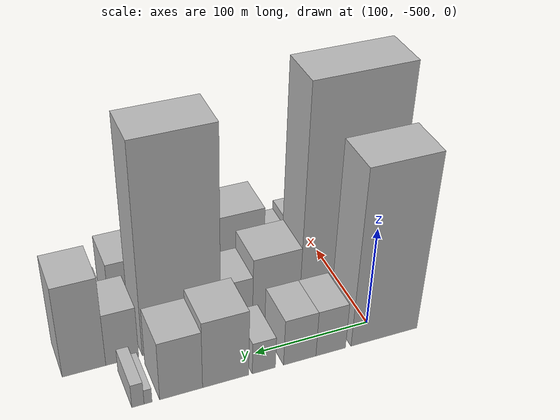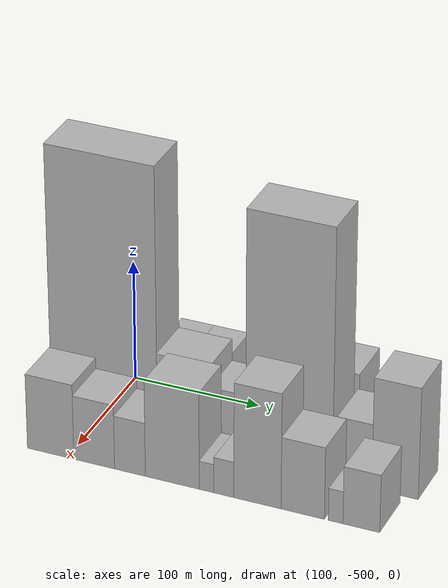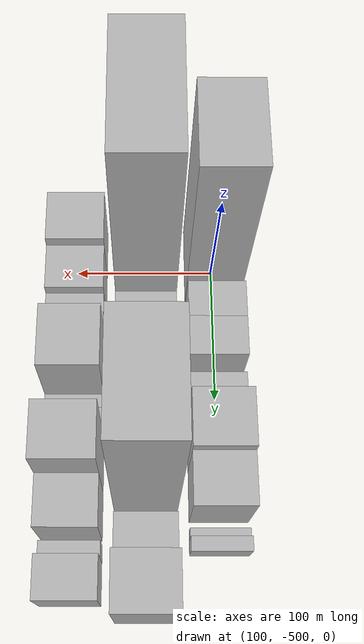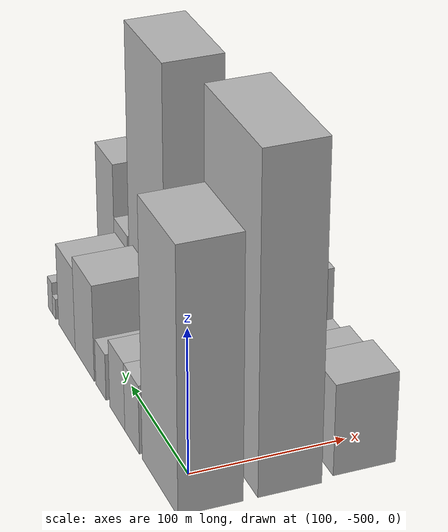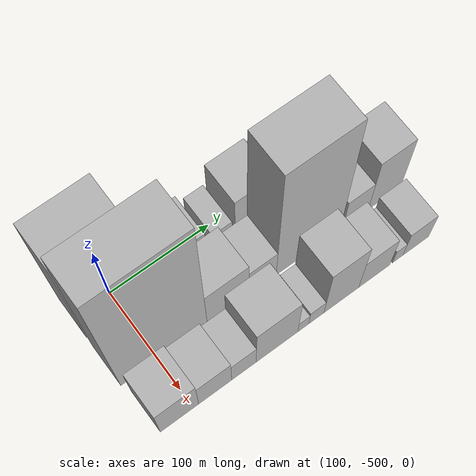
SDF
<sdf version="1.6">
 <world name="default">
  <model name="building_1">
   <static>1</static>
   <pose>100.0000 -505.8273 0 0.000000 0.000000 0.000000</pose>
   <link name="link">
    <pose>0 0 88.50 0 0 0</pose>
    <collision name="collision"><geometry><box><size>40.0000 60.3455 177.0000</size></box></geometry></collision>
    <visual name="visual">
     <cast_shadows>0</cast_shadows>
     <geometry><box><size>40.0000 60.3455 177.0000</size></box></geometry>
     <material>
      <script>
       <uri>model://HANNAS_wall/materials/scripts</uri>
       <uri>model://HANNAS_wall/materials/textures</uri>
       <name>vrc/HANNAS_wall</name>
      </script>
     </material>
    </visual>
   </link>
  </model>
  <model name="building_2">
   <static>1</static>
   <pose>100.0000 -457.5397 0 0.000000 0.000000 0.000000</pose>
   <link name="link">
    <pose>0 0 24.00 0 0 0</pose>
    <collision name="collision"><geometry><box><size>40.0000 26.2296 48.0000</size></box></geometry></collision>
    <visual name="visual">
     <cast_shadows>0</cast_shadows>
     <geometry><box><size>40.0000 26.2296 48.0000</size></box></geometry>
     <material>
      <script>
       <uri>model://HANNAS_wall/materials/scripts</uri>
       <uri>model://HANNAS_wall/materials/textures</uri>
       <name>vrc/HANNAS_wall</name>
      </script>
     </material>
    </visual>
   </link>
  </model>
  <model name="building_3">
   <static>1</static>
   <pose>100.0000 -430.3241 0 0.000000 0.000000 0.000000</pose>
   <link name="link">
    <pose>0 0 24.00 0 0 0</pose>
    <collision name="collision"><geometry><box><size>40.0000 28.2017 48.0000</size></box></geometry></collision>
    <visual name="visual">
     <cast_shadows>0</cast_shadows>
     <geometry><box><size>40.0000 28.2017 48.0000</size></box></geometry>
     <material>
      <script>
       <uri>model://HANNAS_wall/materials/scripts</uri>
       <uri>model://HANNAS_wall/materials/textures</uri>
       <name>vrc/HANNAS_wall</name>
      </script>
     </material>
    </visual>
   </link>
  </model>
  <model name="building_4">
   <static>1</static>
   <pose>100.0000 -399.3763 0 0.000000 0.000000 0.000000</pose>
   <link name="link">
    <pose>0 0 16.50 0 0 0</pose>
    <collision name="collision"><geometry><box><size>40.0000 19.6938 33.0000</size></box></geometry></collision>
    <visual name="visual">
     <cast_shadows>0</cast_shadows>
     <geometry><box><size>40.0000 19.6938 33.0000</size></box></geometry>
     <material>
      <script>
       <uri>model://HANNAS_wall/materials/scripts</uri>
       <uri>model://HANNAS_wall/materials/textures</uri>
       <name>vrc/HANNAS_wall</name>
      </script>
     </material>
    </visual>
   </link>
  </model>
  <model name="building_5">
   <static>1</static>
   <pose>100.0000 -367.3331 0 0.000000 0.000000 0.000000</pose>
   <link name="link">
    <pose>0 0 34.50 0 0 0</pose>
    <collision name="collision"><geometry><box><size>40.0000 38.3928 69.0000</size></box></geometry></collision>
    <visual name="visual">
     <cast_shadows>0</cast_shadows>
     <geometry><box><size>40.0000 38.3928 69.0000</size></box></geometry>
     <material>
      <script>
       <uri>model://HANNAS_wall/materials/scripts</uri>
       <uri>model://HANNAS_wall/materials/textures</uri>
       <name>vrc/HANNAS_wall</name>
      </script>
     </material>
    </visual>
   </link>
  </model>
  <model name="building_6">
   <static>1</static>
   <pose>100.0000 -330.7315 0 0.000000 0.000000 0.000000</pose>
   <link name="link">
    <pose>0 0 30.00 0 0 0</pose>
    <collision name="collision"><geometry><box><size>40.0000 34.8104 60.0000</size></box></geometry></collision>
    <visual name="visual">
     <cast_shadows>0</cast_shadows>
     <geometry><box><size>40.0000 34.8104 60.0000</size></box></geometry>
     <material>
      <script>
       <uri>model://HANNAS_wall/materials/scripts</uri>
       <uri>model://HANNAS_wall/materials/textures</uri>
       <name>vrc/HANNAS_wall</name>
      </script>
     </material>
    </visual>
   </link>
  </model>
  <model name="building_7">
   <static>1</static>
   <pose>100.0000 -304.1413 0 0.000000 0.000000 0.000000</pose>
   <link name="link">
    <pose>0 0 7.50 0 0 0</pose>
    <collision name="collision"><geometry><box><size>40.0000 6.3700 15.0000</size></box></geometry></collision>
    <visual name="visual">
     <cast_shadows>0</cast_shadows>
     <geometry><box><size>40.0000 6.3700 15.0000</size></box></geometry>
     <material>
      <script>
       <uri>model://HANNAS_wall/materials/scripts</uri>
       <uri>model://HANNAS_wall/materials/textures</uri>
       <name>vrc/HANNAS_wall</name>
      </script>
     </material>
    </visual>
   </link>
  </model>
  <model name="building_8">
   <static>1</static>
   <pose>100.0000 -296.1098 0 0.000000 0.000000 0.000000</pose>
   <link name="link">
    <pose>0 0 12.00 0 0 0</pose>
    <collision name="collision"><geometry><box><size>40.0000 9.6930 24.0000</size></box></geometry></collision>
    <visual name="visual">
     <cast_shadows>0</cast_shadows>
     <geometry><box><size>40.0000 9.6930 24.0000</size></box></geometry>
     <material>
      <script>
       <uri>model://HANNAS_wall/materials/scripts</uri>
       <uri>model://HANNAS_wall/materials/textures</uri>
       <name>vrc/HANNAS_wall</name>
      </script>
     </material>
    </visual>
   </link>
  </model>
  <model name="building_32">
   <static>1</static>
   <pose>149.0000 -493.4591 0 0.000000 0.000000 0.000000</pose>
   <link name="link">
    <pose>0 0 112.50 0 0 0</pose>
    <collision name="collision"><geometry><box><size>40.0000 85.0817 225.0000</size></box></geometry></collision>
    <visual name="visual">
     <cast_shadows>0</cast_shadows>
     <geometry><box><size>40.0000 85.0817 225.0000</size></box></geometry>
     <material>
      <script>
       <uri>model://HANNAS_wall/materials/scripts</uri>
       <uri>model://HANNAS_wall/materials/textures</uri>
       <name>vrc/HANNAS_wall</name>
      </script>
     </material>
    </visual>
   </link>
  </model>
  <model name="building_33">
   <static>1</static>
   <pose>149.0000 -429.9121 0 0.000000 0.000000 0.000000</pose>
   <link name="link">
    <pose>0 0 36.00 0 0 0</pose>
    <collision name="collision"><geometry><box><size>40.0000 42.0123 72.0000</size></box></geometry></collision>
    <visual name="visual">
     <cast_shadows>0</cast_shadows>
     <geometry><box><size>40.0000 42.0123 72.0000</size></box></geometry>
     <material>
      <script>
       <uri>model://HANNAS_wall/materials/scripts</uri>
       <uri>model://HANNAS_wall/materials/textures</uri>
       <name>vrc/HANNAS_wall</name>
      </script>
     </material>
    </visual>
   </link>
  </model>
  <model name="building_34">
   <static>1</static>
   <pose>149.0000 -394.9662 0 0.000000 0.000000 0.000000</pose>
   <link name="link">
    <pose>0 0 27.00 0 0 0</pose>
    <collision name="collision"><geometry><box><size>40.0000 27.8796 54.0000</size></box></geometry></collision>
    <visual name="visual">
     <cast_shadows>0</cast_shadows>
     <geometry><box><size>40.0000 27.8796 54.0000</size></box></geometry>
     <material>
      <script>
       <uri>model://HANNAS_wall/materials/scripts</uri>
       <uri>model://HANNAS_wall/materials/textures</uri>
       <name>vrc/HANNAS_wall</name>
      </script>
     </material>
    </visual>
   </link>
  </model>
  <model name="building_35">
   <static>1</static>
   <pose>149.0000 -347.5158 0 0.000000 0.000000 0.000000</pose>
   <link name="link">
    <pose>0 0 103.50 0 0 0</pose>
    <collision name="collision"><geometry><box><size>40.0000 67.0213 207.0000</size></box></geometry></collision>
    <visual name="visual">
     <cast_shadows>0</cast_shadows>
     <geometry><box><size>40.0000 67.0213 207.0000</size></box></geometry>
     <material>
      <script>
       <uri>model://HANNAS_wall/materials/scripts</uri>
       <uri>model://HANNAS_wall/materials/textures</uri>
       <name>vrc/HANNAS_wall</name>
      </script>
     </material>
    </visual>
   </link>
  </model>
  <model name="building_36">
   <static>1</static>
   <pose>149.0000 -297.4360 0 0.000000 0.000000 0.000000</pose>
   <link name="link">
    <pose>0 0 27.00 0 0 0</pose>
    <collision name="collision"><geometry><box><size>40.0000 27.1383 54.0000</size></box></geometry></collision>
    <visual name="visual">
     <cast_shadows>0</cast_shadows>
     <geometry><box><size>40.0000 27.1383 54.0000</size></box></geometry>
     <material>
      <script>
       <uri>model://HANNAS_wall/materials/scripts</uri>
       <uri>model://HANNAS_wall/materials/textures</uri>
       <name>vrc/HANNAS_wall</name>
      </script>
     </material>
    </visual>
   </link>
  </model>
  <model name="building_37">
   <static>1</static>
   <pose>149.0000 -266.2538 0 0.000000 0.000000 0.000000</pose>
   <link name="link">
    <pose>0 0 46.50 0 0 0</pose>
    <collision name="collision"><geometry><box><size>40.0000 35.2261 93.0000</size></box></geometry></collision>
    <visual name="visual">
     <cast_shadows>0</cast_shadows>
     <geometry><box><size>40.0000 35.2261 93.0000</size></box></geometry>
     <material>
      <script>
       <uri>model://HANNAS_wall/materials/scripts</uri>
       <uri>model://HANNAS_wall/materials/textures</uri>
       <name>vrc/HANNAS_wall</name>
      </script>
     </material>
    </visual>
   </link>
  </model>
  <model name="building_63">
   <static>1</static>
   <pose>198.0000 -513.4389 0 0.000000 0.000000 0.000000</pose>
   <link name="link">
    <pose>0 0 31.50 0 0 0</pose>
    <collision name="collision"><geometry><box><size>40.0000 37.1222 63.0000</size></box></geometry></collision>
    <visual name="visual">
     <cast_shadows>0</cast_shadows>
     <geometry><box><size>40.0000 37.1222 63.0000</size></box></geometry>
     <material>
      <script>
       <uri>model://HANNAS_wall/materials/scripts</uri>
       <uri>model://HANNAS_wall/materials/textures</uri>
       <name>vrc/HANNAS_wall</name>
      </script>
     </material>
    </visual>
   </link>
  </model>
  <model name="building_64">
   <static>1</static>
   <pose>198.0000 -478.7332 0 0.000000 0.000000 0.000000</pose>
   <link name="link">
    <pose>0 0 27.00 0 0 0</pose>
    <collision name="collision"><geometry><box><size>40.0000 32.2891 54.0000</size></box></geometry></collision>
    <visual name="visual">
     <cast_shadows>0</cast_shadows>
     <geometry><box><size>40.0000 32.2891 54.0000</size></box></geometry>
     <material>
      <script>
       <uri>model://HANNAS_wall/materials/scripts</uri>
       <uri>model://HANNAS_wall/materials/textures</uri>
       <name>vrc/HANNAS_wall</name>
      </script>
     </material>
    </visual>
   </link>
  </model>
  <model name="building_65">
   <static>1</static>
   <pose>198.0000 -450.4644 0 0.000000 0.000000 0.000000</pose>
   <link name="link">
    <pose>0 0 22.50 0 0 0</pose>
    <collision name="collision"><geometry><box><size>40.0000 24.2485 45.0000</size></box></geometry></collision>
    <visual name="visual">
     <cast_shadows>0</cast_shadows>
     <geometry><box><size>40.0000 24.2485 45.0000</size></box></geometry>
     <material>
      <script>
       <uri>model://HANNAS_wall/materials/scripts</uri>
       <uri>model://HANNAS_wall/materials/textures</uri>
       <name>vrc/HANNAS_wall</name>
      </script>
     </material>
    </visual>
   </link>
  </model>
  <model name="building_66">
   <static>1</static>
   <pose>198.0000 -417.3214 0 0.000000 0.000000 0.000000</pose>
   <link name="link">
    <pose>0 0 40.50 0 0 0</pose>
    <collision name="collision"><geometry><box><size>40.0000 42.0375 81.0000</size></box></geometry></collision>
    <visual name="visual">
     <cast_shadows>0</cast_shadows>
     <geometry><box><size>40.0000 42.0375 81.0000</size></box></geometry>
     <material>
      <script>
       <uri>model://HANNAS_wall/materials/scripts</uri>
       <uri>model://HANNAS_wall/materials/textures</uri>
       <name>vrc/HANNAS_wall</name>
      </script>
     </material>
    </visual>
   </link>
  </model>
  <model name="building_67">
   <static>1</static>
   <pose>198.0000 -390.6924 0 0.000000 0.000000 0.000000</pose>
   <link name="link">
    <pose>0 0 12.00 0 0 0</pose>
    <collision name="collision"><geometry><box><size>40.0000 11.2205 24.0000</size></box></geometry></collision>
    <visual name="visual">
     <cast_shadows>0</cast_shadows>
     <geometry><box><size>40.0000 11.2205 24.0000</size></box></geometry>
     <material>
      <script>
       <uri>model://HANNAS_wall/materials/scripts</uri>
       <uri>model://HANNAS_wall/materials/textures</uri>
       <name>vrc/HANNAS_wall</name>
      </script>
     </material>
    </visual>
   </link>
  </model>
  <model name="building_68">
   <static>1</static>
   <pose>198.0000 -377.2851 0 0.000000 0.000000 0.000000</pose>
   <link name="link">
    <pose>0 0 15.00 0 0 0</pose>
    <collision name="collision"><geometry><box><size>40.0000 15.5940 30.0000</size></box></geometry></collision>
    <visual name="visual">
     <cast_shadows>0</cast_shadows>
     <geometry><box><size>40.0000 15.5940 30.0000</size></box></geometry>
     <material>
      <script>
       <uri>model://HANNAS_wall/materials/scripts</uri>
       <uri>model://HANNAS_wall/materials/textures</uri>
       <name>vrc/HANNAS_wall</name>
      </script>
     </material>
    </visual>
   </link>
  </model>
  <model name="building_69">
   <static>1</static>
   <pose>198.0000 -351.4311 0 0.000000 0.000000 0.000000</pose>
   <link name="link">
    <pose>0 0 48.00 0 0 0</pose>
    <collision name="collision"><geometry><box><size>40.0000 36.1139 96.0000</size></box></geometry></collision>
    <visual name="visual">
     <cast_shadows>0</cast_shadows>
     <geometry><box><size>40.0000 36.1139 96.0000</size></box></geometry>
     <material>
      <script>
       <uri>model://HANNAS_wall/materials/scripts</uri>
       <uri>model://HANNAS_wall/materials/textures</uri>
       <name>vrc/HANNAS_wall</name>
      </script>
     </material>
    </visual>
   </link>
  </model>
  <model name="building_70">
   <static>1</static>
   <pose>198.0000 -316.9219 0 0.000000 0.000000 0.000000</pose>
   <link name="link">
    <pose>0 0 30.00 0 0 0</pose>
    <collision name="collision"><geometry><box><size>40.0000 32.9047 60.0000</size></box></geometry></collision>
    <visual name="visual">
     <cast_shadows>0</cast_shadows>
     <geometry><box><size>40.0000 32.9047 60.0000</size></box></geometry>
     <material>
      <script>
       <uri>model://HANNAS_wall/materials/scripts</uri>
       <uri>model://HANNAS_wall/materials/textures</uri>
       <name>vrc/HANNAS_wall</name>
      </script>
     </material>
    </visual>
   </link>
  </model>
  <model name="building_71">
   <static>1</static>
   <pose>198.0000 -292.0058 0 0.000000 0.000000 0.000000</pose>
   <link name="link">
    <pose>0 0 13.50 0 0 0</pose>
    <collision name="collision"><geometry><box><size>40.0000 10.9275 27.0000</size></box></geometry></collision>
    <visual name="visual">
     <cast_shadows>0</cast_shadows>
     <geometry><box><size>40.0000 10.9275 27.0000</size></box></geometry>
     <material>
      <script>
       <uri>model://HANNAS_wall/materials/scripts</uri>
       <uri>model://HANNAS_wall/materials/textures</uri>
       <name>vrc/HANNAS_wall</name>
      </script>
     </material>
    </visual>
   </link>
  </model>
  <model name="building_72">
   <static>1</static>
   <pose>198.0000 -272.7286 0 0.000000 0.000000 0.000000</pose>
   <link name="link">
    <pose>0 0 24.00 0 0 0</pose>
    <collision name="collision"><geometry><box><size>40.0000 27.6270 48.0000</size></box></geometry></collision>
    <visual name="visual">
     <cast_shadows>0</cast_shadows>
     <geometry><box><size>40.0000 27.6270 48.0000</size></box></geometry>
     <material>
      <script>
       <uri>model://HANNAS_wall/materials/scripts</uri>
       <uri>model://HANNAS_wall/materials/textures</uri>
       <name>vrc/HANNAS_wall</name>
      </script>
     </material>
    </visual>
   </link>
  </model>
 </world>
</sdf>
